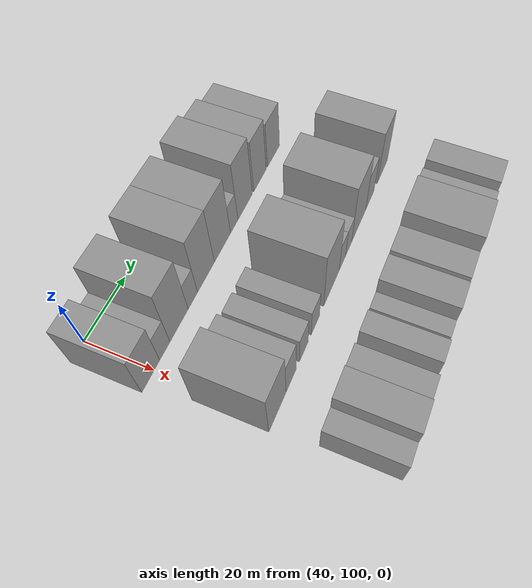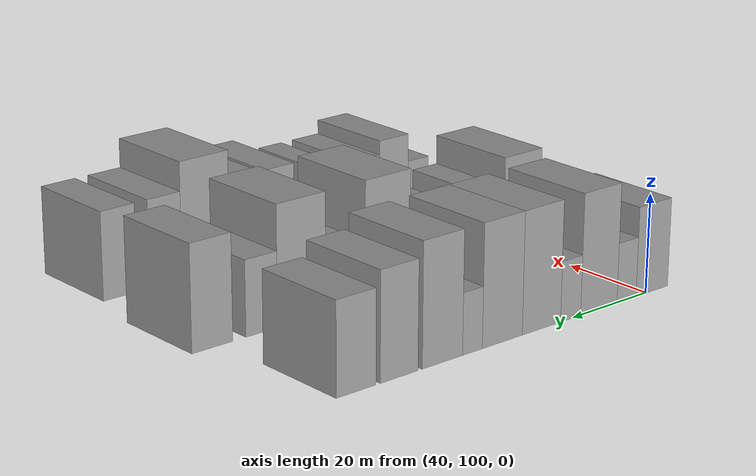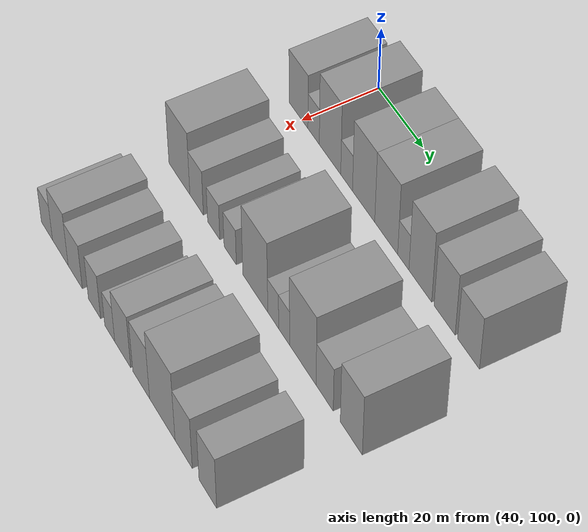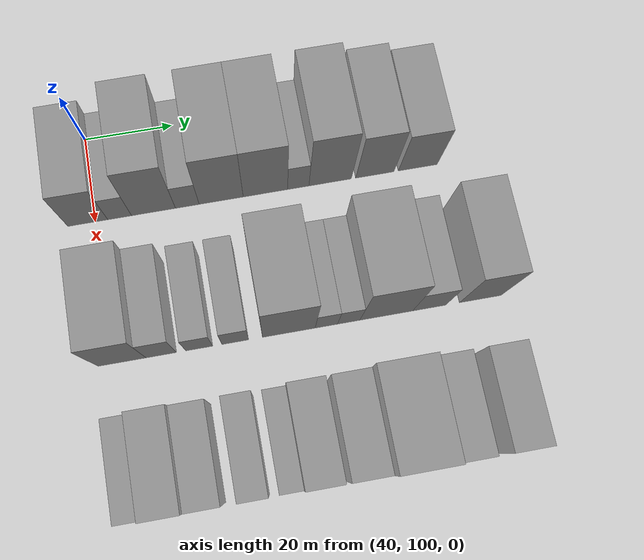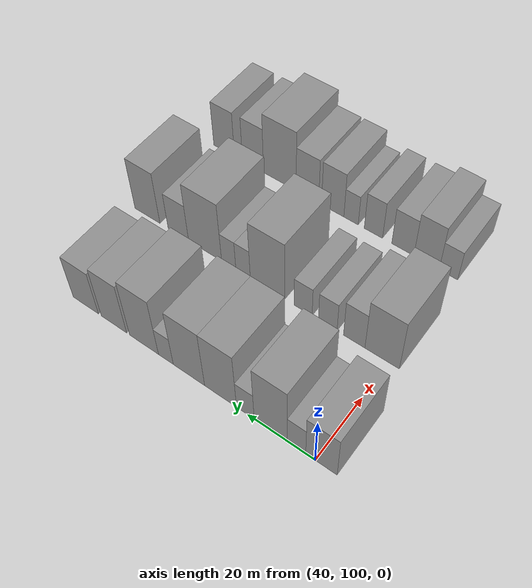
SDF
<sdf version="1.6">
 <world name="default">
  <model name="building_51">
   <static>1</static>
   <pose>50.0000 98.3736 0 0.000000 0.000000 0.000000</pose>
   <link name="link">
    <pose>0 0 9.00 0 0 0</pose>
    <collision name="collision"><geometry><box><size>20.0000 8.8935 18.0000</size></box></geometry></collision>
    <visual name="visual">
     <cast_shadows>0</cast_shadows>
     <geometry><box><size>20.0000 8.8935 18.0000</size></box></geometry>
     <material>
      <script>
       <uri>model://grey_wall/materials/scripts</uri>
       <uri>model://grey_wall/materials/textures</uri>
       <name>vrc/grey_wall</name>
      </script>
     </material>
    </visual>
   </link>
  </model>
  <model name="building_52">
   <static>1</static>
   <pose>50.0000 105.4700 0 0.000000 0.000000 0.000000</pose>
   <link name="link">
    <pose>0 0 6.00 0 0 0</pose>
    <collision name="collision"><geometry><box><size>20.0000 5.2992 12.0000</size></box></geometry></collision>
    <visual name="visual">
     <cast_shadows>0</cast_shadows>
     <geometry><box><size>20.0000 5.2992 12.0000</size></box></geometry>
     <material>
      <script>
       <uri>model://grey_wall/materials/scripts</uri>
       <uri>model://grey_wall/materials/textures</uri>
       <name>vrc/grey_wall</name>
      </script>
     </material>
    </visual>
   </link>
  </model>
  <model name="building_53">
   <static>1</static>
   <pose>50.0000 113.0451 0 0.000000 0.000000 0.000000</pose>
   <link name="link">
    <pose>0 0 12.00 0 0 0</pose>
    <collision name="collision"><geometry><box><size>20.0000 9.8510 24.0000</size></box></geometry></collision>
    <visual name="visual">
     <cast_shadows>0</cast_shadows>
     <geometry><box><size>20.0000 9.8510 24.0000</size></box></geometry>
     <material>
      <script>
       <uri>model://grey_wall/materials/scripts</uri>
       <uri>model://grey_wall/materials/textures</uri>
       <name>vrc/grey_wall</name>
      </script>
     </material>
    </visual>
   </link>
  </model>
  <model name="building_54">
   <static>1</static>
   <pose>50.0000 120.6383 0 0.000000 0.000000 0.000000</pose>
   <link name="link">
    <pose>0 0 6.00 0 0 0</pose>
    <collision name="collision"><geometry><box><size>20.0000 5.3354 12.0000</size></box></geometry></collision>
    <visual name="visual">
     <cast_shadows>0</cast_shadows>
     <geometry><box><size>20.0000 5.3354 12.0000</size></box></geometry>
     <material>
      <script>
       <uri>model://grey_wall/materials/scripts</uri>
       <uri>model://grey_wall/materials/textures</uri>
       <name>vrc/grey_wall</name>
      </script>
     </material>
    </visual>
   </link>
  </model>
  <model name="building_55">
   <static>1</static>
   <pose>50.0000 128.2772 0 0.000000 0.000000 0.000000</pose>
   <link name="link">
    <pose>0 0 12.00 0 0 0</pose>
    <collision name="collision"><geometry><box><size>20.0000 9.9423 24.0000</size></box></geometry></collision>
    <visual name="visual">
     <cast_shadows>0</cast_shadows>
     <geometry><box><size>20.0000 9.9423 24.0000</size></box></geometry>
     <material>
      <script>
       <uri>model://grey_wall/materials/scripts</uri>
       <uri>model://grey_wall/materials/textures</uri>
       <name>vrc/grey_wall</name>
      </script>
     </material>
    </visual>
   </link>
  </model>
  <model name="building_56">
   <static>1</static>
   <pose>50.0000 138.2839 0 0.000000 0.000000 0.000000</pose>
   <link name="link">
    <pose>0 0 12.00 0 0 0</pose>
    <collision name="collision"><geometry><box><size>20.0000 10.0712 24.0000</size></box></geometry></collision>
    <visual name="visual">
     <cast_shadows>0</cast_shadows>
     <geometry><box><size>20.0000 10.0712 24.0000</size></box></geometry>
     <material>
      <script>
       <uri>model://grey_wall/materials/scripts</uri>
       <uri>model://grey_wall/materials/textures</uri>
       <name>vrc/grey_wall</name>
      </script>
     </material>
    </visual>
   </link>
  </model>
  <model name="building_57">
   <static>1</static>
   <pose>50.0000 145.7459 0 0.000000 0.000000 0.000000</pose>
   <link name="link">
    <pose>0 0 6.00 0 0 0</pose>
    <collision name="collision"><geometry><box><size>20.0000 4.8527 12.0000</size></box></geometry></collision>
    <visual name="visual">
     <cast_shadows>0</cast_shadows>
     <geometry><box><size>20.0000 4.8527 12.0000</size></box></geometry>
     <material>
      <script>
       <uri>model://grey_wall/materials/scripts</uri>
       <uri>model://grey_wall/materials/textures</uri>
       <name>vrc/grey_wall</name>
      </script>
     </material>
    </visual>
   </link>
  </model>
  <model name="building_58">
   <static>1</static>
   <pose>50.0000 153.0275 0 0.000000 0.000000 0.000000</pose>
   <link name="link">
    <pose>0 0 12.00 0 0 0</pose>
    <collision name="collision"><geometry><box><size>20.0000 9.7106 24.0000</size></box></geometry></collision>
    <visual name="visual">
     <cast_shadows>0</cast_shadows>
     <geometry><box><size>20.0000 9.7106 24.0000</size></box></geometry>
     <material>
      <script>
       <uri>model://grey_wall/materials/scripts</uri>
       <uri>model://grey_wall/materials/textures</uri>
       <name>vrc/grey_wall</name>
      </script>
     </material>
    </visual>
   </link>
  </model>
  <model name="building_59">
   <static>1</static>
   <pose>50.0000 163.2821 0 0.000000 0.000000 0.000000</pose>
   <link name="link">
    <pose>0 0 10.50 0 0 0</pose>
    <collision name="collision"><geometry><box><size>20.0000 8.7987 21.0000</size></box></geometry></collision>
    <visual name="visual">
     <cast_shadows>0</cast_shadows>
     <geometry><box><size>20.0000 8.7987 21.0000</size></box></geometry>
     <material>
      <script>
       <uri>model://grey_wall/materials/scripts</uri>
       <uri>model://grey_wall/materials/textures</uri>
       <name>vrc/grey_wall</name>
      </script>
     </material>
    </visual>
   </link>
  </model>
  <model name="building_60">
   <static>1</static>
   <pose>50.0000 173.1766 0 0.000000 0.000000 0.000000</pose>
   <link name="link">
    <pose>0 0 9.00 0 0 0</pose>
    <collision name="collision"><geometry><box><size>20.0000 8.9902 18.0000</size></box></geometry></collision>
    <visual name="visual">
     <cast_shadows>0</cast_shadows>
     <geometry><box><size>20.0000 8.9902 18.0000</size></box></geometry>
     <material>
      <script>
       <uri>model://grey_wall/materials/scripts</uri>
       <uri>model://grey_wall/materials/textures</uri>
       <name>vrc/grey_wall</name>
      </script>
     </material>
    </visual>
   </link>
  </model>
  <model name="building_130">
   <static>1</static>
   <pose>82.0000 101.9726 0 0.000000 0.000000 0.000000</pose>
   <link name="link">
    <pose>0 0 10.50 0 0 0</pose>
    <collision name="collision"><geometry><box><size>20.0000 10.2291 21.0000</size></box></geometry></collision>
    <visual name="visual">
     <cast_shadows>0</cast_shadows>
     <geometry><box><size>20.0000 10.2291 21.0000</size></box></geometry>
     <material>
      <script>
       <uri>model://grey_wall/materials/scripts</uri>
       <uri>model://grey_wall/materials/textures</uri>
       <name>vrc/grey_wall</name>
      </script>
     </material>
    </visual>
   </link>
  </model>
  <model name="building_131">
   <static>1</static>
   <pose>82.0000 110.3439 0 0.000000 0.000000 0.000000</pose>
   <link name="link">
    <pose>0 0 7.50 0 0 0</pose>
    <collision name="collision"><geometry><box><size>20.0000 6.5135 15.0000</size></box></geometry></collision>
    <visual name="visual">
     <cast_shadows>0</cast_shadows>
     <geometry><box><size>20.0000 6.5135 15.0000</size></box></geometry>
     <material>
      <script>
       <uri>model://grey_wall/materials/scripts</uri>
       <uri>model://grey_wall/materials/textures</uri>
       <name>vrc/grey_wall</name>
      </script>
     </material>
    </visual>
   </link>
  </model>
  <model name="building_132">
   <static>1</static>
   <pose>82.0000 118.4934 0 0.000000 0.000000 0.000000</pose>
   <link name="link">
    <pose>0 0 6.00 0 0 0</pose>
    <collision name="collision"><geometry><box><size>20.0000 5.7856 12.0000</size></box></geometry></collision>
    <visual name="visual">
     <cast_shadows>0</cast_shadows>
     <geometry><box><size>20.0000 5.7856 12.0000</size></box></geometry>
     <material>
      <script>
       <uri>model://grey_wall/materials/scripts</uri>
       <uri>model://grey_wall/materials/textures</uri>
       <name>vrc/grey_wall</name>
      </script>
     </material>
    </visual>
   </link>
  </model>
  <model name="building_133">
   <static>1</static>
   <pose>82.0000 126.2512 0 0.000000 0.000000 0.000000</pose>
   <link name="link">
    <pose>0 0 6.00 0 0 0</pose>
    <collision name="collision"><geometry><box><size>20.0000 5.7299 12.0000</size></box></geometry></collision>
    <visual name="visual">
     <cast_shadows>0</cast_shadows>
     <geometry><box><size>20.0000 5.7299 12.0000</size></box></geometry>
     <material>
      <script>
       <uri>model://grey_wall/materials/scripts</uri>
       <uri>model://grey_wall/materials/textures</uri>
       <name>vrc/grey_wall</name>
      </script>
     </material>
    </visual>
   </link>
  </model>
  <model name="building_134">
   <static>1</static>
   <pose>82.0000 137.8178 0 0.000000 0.000000 0.000000</pose>
   <link name="link">
    <pose>0 0 12.00 0 0 0</pose>
    <collision name="collision"><geometry><box><size>20.0000 11.4035 24.0000</size></box></geometry></collision>
    <visual name="visual">
     <cast_shadows>0</cast_shadows>
     <geometry><box><size>20.0000 11.4035 24.0000</size></box></geometry>
     <material>
      <script>
       <uri>model://grey_wall/materials/scripts</uri>
       <uri>model://grey_wall/materials/textures</uri>
       <name>vrc/grey_wall</name>
      </script>
     </material>
    </visual>
   </link>
  </model>
  <model name="building_135">
   <static>1</static>
   <pose>82.0000 145.9608 0 0.000000 0.000000 0.000000</pose>
   <link name="link">
    <pose>0 0 6.00 0 0 0</pose>
    <collision name="collision"><geometry><box><size>20.0000 4.8825 12.0000</size></box></geometry></collision>
    <visual name="visual">
     <cast_shadows>0</cast_shadows>
     <geometry><box><size>20.0000 4.8825 12.0000</size></box></geometry>
     <material>
      <script>
       <uri>model://grey_wall/materials/scripts</uri>
       <uri>model://grey_wall/materials/textures</uri>
       <name>vrc/grey_wall</name>
      </script>
     </material>
    </visual>
   </link>
  </model>
  <model name="building_136">
   <static>1</static>
   <pose>82.0000 150.8402 0 0.000000 0.000000 0.000000</pose>
   <link name="link">
    <pose>0 0 6.00 0 0 0</pose>
    <collision name="collision"><geometry><box><size>20.0000 4.8762 12.0000</size></box></geometry></collision>
    <visual name="visual">
     <cast_shadows>0</cast_shadows>
     <geometry><box><size>20.0000 4.8762 12.0000</size></box></geometry>
     <material>
      <script>
       <uri>model://grey_wall/materials/scripts</uri>
       <uri>model://grey_wall/materials/textures</uri>
       <name>vrc/grey_wall</name>
      </script>
     </material>
    </visual>
   </link>
  </model>
  <model name="building_137">
   <static>1</static>
   <pose>82.0000 159.0814 0 0.000000 0.000000 0.000000</pose>
   <link name="link">
    <pose>0 0 12.00 0 0 0</pose>
    <collision name="collision"><geometry><box><size>20.0000 11.6063 24.0000</size></box></geometry></collision>
    <visual name="visual">
     <cast_shadows>0</cast_shadows>
     <geometry><box><size>20.0000 11.6063 24.0000</size></box></geometry>
     <material>
      <script>
       <uri>model://grey_wall/materials/scripts</uri>
       <uri>model://grey_wall/materials/textures</uri>
       <name>vrc/grey_wall</name>
      </script>
     </material>
    </visual>
   </link>
  </model>
  <model name="building_138">
   <static>1</static>
   <pose>82.0000 168.5644 0 0.000000 0.000000 0.000000</pose>
   <link name="link">
    <pose>0 0 7.50 0 0 0</pose>
    <collision name="collision"><geometry><box><size>20.0000 7.3597 15.0000</size></box></geometry></collision>
    <visual name="visual">
     <cast_shadows>0</cast_shadows>
     <geometry><box><size>20.0000 7.3597 15.0000</size></box></geometry>
     <material>
      <script>
       <uri>model://grey_wall/materials/scripts</uri>
       <uri>model://grey_wall/materials/textures</uri>
       <name>vrc/grey_wall</name>
      </script>
     </material>
    </visual>
   </link>
  </model>
  <model name="building_139">
   <static>1</static>
   <pose>82.0000 179.8732 0 0.000000 0.000000 0.000000</pose>
   <link name="link">
    <pose>0 0 10.50 0 0 0</pose>
    <collision name="collision"><geometry><box><size>20.0000 9.2580 21.0000</size></box></geometry></collision>
    <visual name="visual">
     <cast_shadows>0</cast_shadows>
     <geometry><box><size>20.0000 9.2580 21.0000</size></box></geometry>
     <material>
      <script>
       <uri>model://grey_wall/materials/scripts</uri>
       <uri>model://grey_wall/materials/textures</uri>
       <name>vrc/grey_wall</name>
      </script>
     </material>
    </visual>
   </link>
  </model>
  <model name="building_207">
   <static>1</static>
   <pose>114.0000 101.2279 0 0.000000 0.000000 0.000000</pose>
   <link name="link">
    <pose>0 0 6.00 0 0 0</pose>
    <collision name="collision"><geometry><box><size>20.0000 5.6994 12.0000</size></box></geometry></collision>
    <visual name="visual">
     <cast_shadows>0</cast_shadows>
     <geometry><box><size>20.0000 5.6994 12.0000</size></box></geometry>
     <material>
      <script>
       <uri>model://grey_wall/materials/scripts</uri>
       <uri>model://grey_wall/materials/textures</uri>
       <name>vrc/grey_wall</name>
      </script>
     </material>
    </visual>
   </link>
  </model>
  <model name="building_208">
   <static>1</static>
   <pose>114.0000 108.0371 0 0.000000 0.000000 0.000000</pose>
   <link name="link">
    <pose>0 0 9.00 0 0 0</pose>
    <collision name="collision"><geometry><box><size>20.0000 7.9191 18.0000</size></box></geometry></collision>
    <visual name="visual">
     <cast_shadows>0</cast_shadows>
     <geometry><box><size>20.0000 7.9191 18.0000</size></box></geometry>
     <material>
      <script>
       <uri>model://grey_wall/materials/scripts</uri>
       <uri>model://grey_wall/materials/textures</uri>
       <name>vrc/grey_wall</name>
      </script>
     </material>
    </visual>
   </link>
  </model>
  <model name="building_209">
   <static>1</static>
   <pose>114.0000 115.5342 0 0.000000 0.000000 0.000000</pose>
   <link name="link">
    <pose>0 0 7.50 0 0 0</pose>
    <collision name="collision"><geometry><box><size>20.0000 7.0751 15.0000</size></box></geometry></collision>
    <visual name="visual">
     <cast_shadows>0</cast_shadows>
     <geometry><box><size>20.0000 7.0751 15.0000</size></box></geometry>
     <material>
      <script>
       <uri>model://grey_wall/materials/scripts</uri>
       <uri>model://grey_wall/materials/textures</uri>
       <name>vrc/grey_wall</name>
      </script>
     </material>
    </visual>
   </link>
  </model>
  <model name="building_210">
   <static>1</static>
   <pose>114.0000 125.0756 0 0.000000 0.000000 0.000000</pose>
   <link name="link">
    <pose>0 0 7.50 0 0 0</pose>
    <collision name="collision"><geometry><box><size>20.0000 6.0077 15.0000</size></box></geometry></collision>
    <visual name="visual">
     <cast_shadows>0</cast_shadows>
     <geometry><box><size>20.0000 6.0077 15.0000</size></box></geometry>
     <material>
      <script>
       <uri>model://grey_wall/materials/scripts</uri>
       <uri>model://grey_wall/materials/textures</uri>
       <name>vrc/grey_wall</name>
      </script>
     </material>
    </visual>
   </link>
  </model>
  <model name="building_211">
   <static>1</static>
   <pose>114.0000 132.4828 0 0.000000 0.000000 0.000000</pose>
   <link name="link">
    <pose>0 0 6.00 0 0 0</pose>
    <collision name="collision"><geometry><box><size>20.0000 4.8067 12.0000</size></box></geometry></collision>
    <visual name="visual">
     <cast_shadows>0</cast_shadows>
     <geometry><box><size>20.0000 4.8067 12.0000</size></box></geometry>
     <material>
      <script>
       <uri>model://grey_wall/materials/scripts</uri>
       <uri>model://grey_wall/materials/textures</uri>
       <name>vrc/grey_wall</name>
      </script>
     </material>
    </visual>
   </link>
  </model>
  <model name="building_212">
   <static>1</static>
   <pose>114.0000 138.6920 0 0.000000 0.000000 0.000000</pose>
   <link name="link">
    <pose>0 0 9.00 0 0 0</pose>
    <collision name="collision"><geometry><box><size>20.0000 7.6116 18.0000</size></box></geometry></collision>
    <visual name="visual">
     <cast_shadows>0</cast_shadows>
     <geometry><box><size>20.0000 7.6116 18.0000</size></box></geometry>
     <material>
      <script>
       <uri>model://grey_wall/materials/scripts</uri>
       <uri>model://grey_wall/materials/textures</uri>
       <name>vrc/grey_wall</name>
      </script>
     </material>
    </visual>
   </link>
  </model>
  <model name="building_213">
   <static>1</static>
   <pose>114.0000 147.4345 0 0.000000 0.000000 0.000000</pose>
   <link name="link">
    <pose>0 0 9.00 0 0 0</pose>
    <collision name="collision"><geometry><box><size>20.0000 7.8736 18.0000</size></box></geometry></collision>
    <visual name="visual">
     <cast_shadows>0</cast_shadows>
     <geometry><box><size>20.0000 7.8736 18.0000</size></box></geometry>
     <material>
      <script>
       <uri>model://grey_wall/materials/scripts</uri>
       <uri>model://grey_wall/materials/textures</uri>
       <name>vrc/grey_wall</name>
      </script>
     </material>
    </visual>
   </link>
  </model>
  <model name="building_214">
   <static>1</static>
   <pose>114.0000 157.2077 0 0.000000 0.000000 0.000000</pose>
   <link name="link">
    <pose>0 0 12.00 0 0 0</pose>
    <collision name="collision"><geometry><box><size>20.0000 11.6728 24.0000</size></box></geometry></collision>
    <visual name="visual">
     <cast_shadows>0</cast_shadows>
     <geometry><box><size>20.0000 11.6728 24.0000</size></box></geometry>
     <material>
      <script>
       <uri>model://grey_wall/materials/scripts</uri>
       <uri>model://grey_wall/materials/textures</uri>
       <name>vrc/grey_wall</name>
      </script>
     </material>
    </visual>
   </link>
  </model>
  <model name="building_215">
   <static>1</static>
   <pose>114.0000 166.9275 0 0.000000 0.000000 0.000000</pose>
   <link name="link">
    <pose>0 0 9.00 0 0 0</pose>
    <collision name="collision"><geometry><box><size>20.0000 7.7668 18.0000</size></box></geometry></collision>
    <visual name="visual">
     <cast_shadows>0</cast_shadows>
     <geometry><box><size>20.0000 7.7668 18.0000</size></box></geometry>
     <material>
      <script>
       <uri>model://grey_wall/materials/scripts</uri>
       <uri>model://grey_wall/materials/textures</uri>
       <name>vrc/grey_wall</name>
      </script>
     </material>
    </visual>
   </link>
  </model>
  <model name="building_216">
   <static>1</static>
   <pose>114.0000 177.6940 0 0.000000 0.000000 0.000000</pose>
   <link name="link">
    <pose>0 0 9.00 0 0 0</pose>
    <collision name="collision"><geometry><box><size>20.0000 7.7662 18.0000</size></box></geometry></collision>
    <visual name="visual">
     <cast_shadows>0</cast_shadows>
     <geometry><box><size>20.0000 7.7662 18.0000</size></box></geometry>
     <material>
      <script>
       <uri>model://grey_wall/materials/scripts</uri>
       <uri>model://grey_wall/materials/textures</uri>
       <name>vrc/grey_wall</name>
      </script>
     </material>
    </visual>
   </link>
  </model>
 </world>
</sdf>
